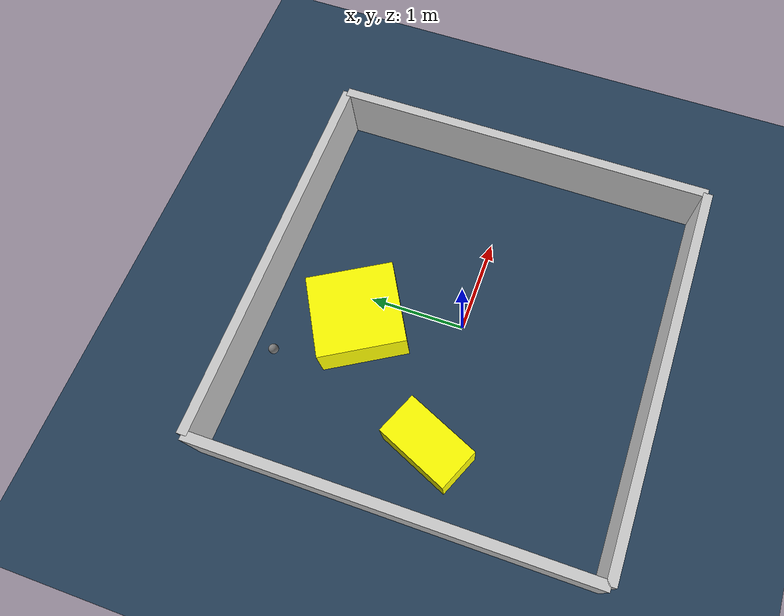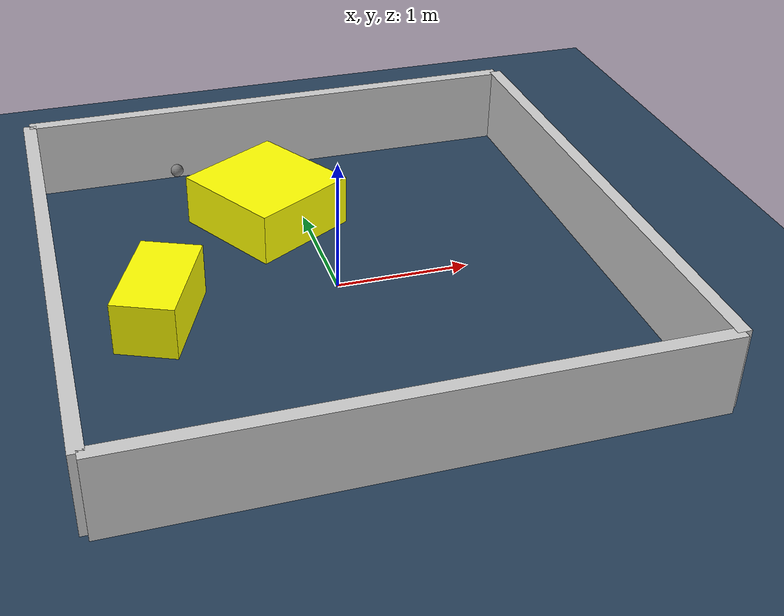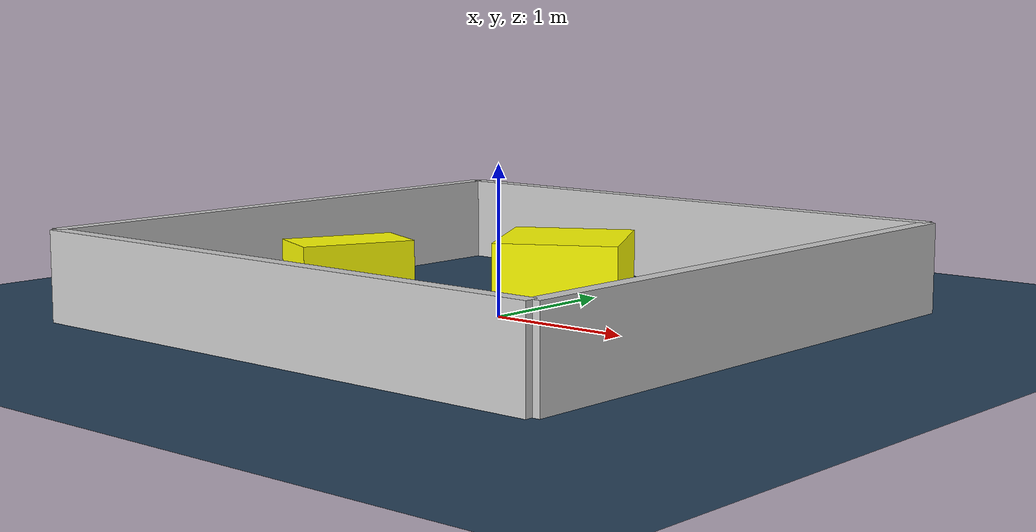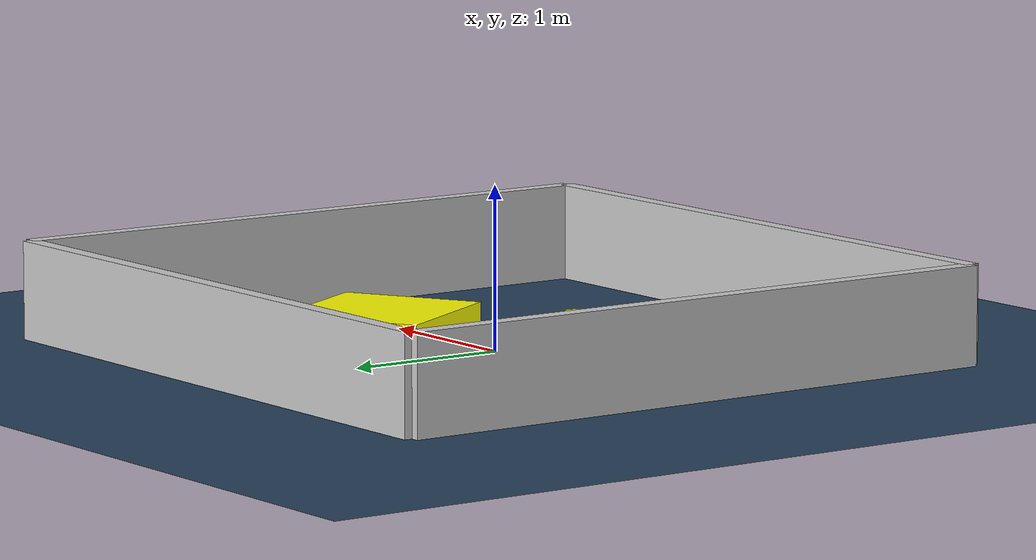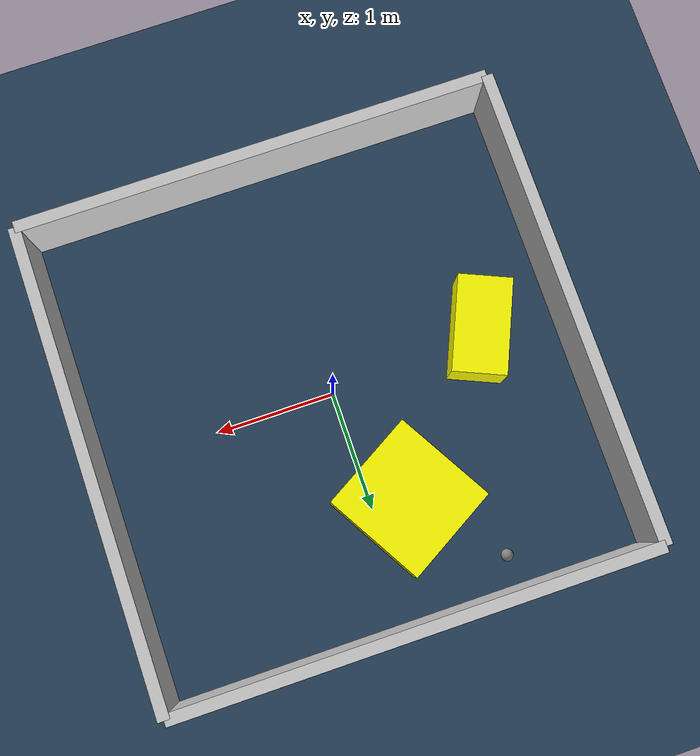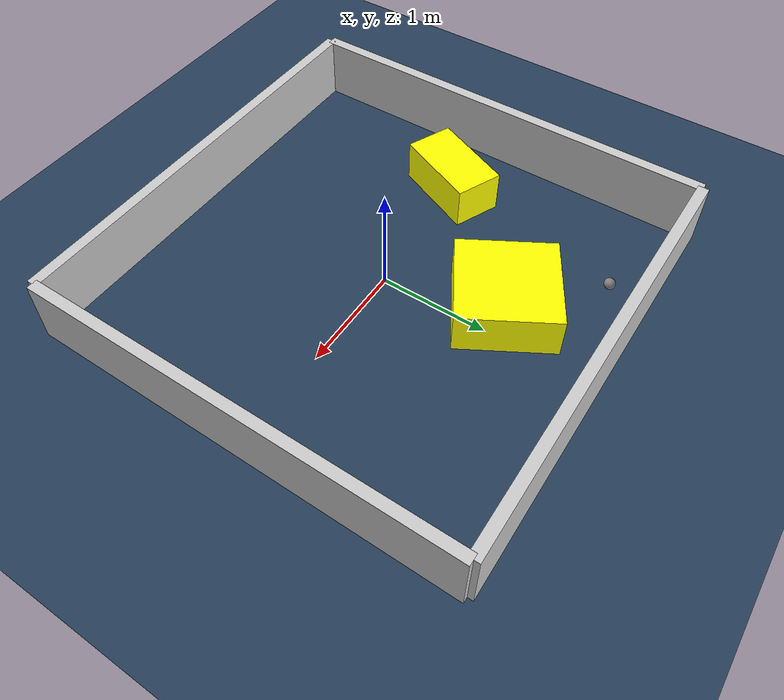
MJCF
<?xml version="1.0" ?>
<mujoco model="generated_environment">
  <option timestep="0.01" integrator="RK4" cone="elliptic"/>
  <default>
    <geom density="1"/>
  </default>
  <asset>
    <texture builtin="gradient" height="3072" rgb1="0.3 0.5 0.7" rgb2="0 0 0" type="skybox" width="512"/>
    <texture builtin="checker" height="300" mark="edge" markrgb="0.8 0.8 0.8" name="groundplane" rgb1="0.2 0.3 0.4" rgb2="0.1 0.2 0.3" type="2d" width="300"/>
    <material name="groundplane" reflectance="0.2" texrepeat="5 5" texture="groundplane" texuniform="true"/>
    <material name="robot" rgba="0.0 1.0 0.0 1"/>
  </asset>
  <worldbody>
    <light dir="0 0 -1" directional="true" pos="0 0 1.5"/>
    <geom condim="4" friction="1.0 0.005 0.001" material="groundplane" name="floor" size="0 0 0.05" type="plane"/>
    <body name="walls">
      <geom name="wall_1" condim="4" pos="-2.0 0.0 0.3" rgba="0.800000011920929 0.800000011920929 0.800000011920929 1.0" size="0.05 2.0 0.3" type="box"/>
      <geom name="wall_2" condim="4" pos="2.0 0.0 0.3" rgba="0.800000011920929 0.800000011920929 0.800000011920929 1.0" size="0.05 2.0 0.3" type="box"/>
      <geom name="wall_3" condim="4" pos="0.0 -2.0 0.3" rgba="0.800000011920929 0.800000011920929 0.800000011920929 1.0" size="2.0 0.05 0.3" type="box"/>
      <geom name="wall_4" condim="4" pos="0.0 2.0 0.3" rgba="0.800000011920929 0.800000011920929 0.800000011920929 1.0" size="2.0 0.05 0.3" type="box"/>
    </body>
    <body name="robot">
      <joint name="joint_x" type="slide" pos="0 0 0" axis="1 0 0"/>
      <joint name="joint_y" type="slide" pos="0 0 0" axis="0 1 0"/>
      <geom name="robot" type="sphere" pos="-0.8885969698274492 1.6934144132893323 0.2" size="0.05" mass="5." friction="1.0 0.005 0.0001" condim="4"/>
      <site name="sensor_ball"/>
    </body>
    <body name="obstacle_1_movable">
      <geom name="obstacle_1_movable" condim="4" pos="-0.288213915105183 1.0247680295821744 0.2" euler="0 0 30.220578417223294" friction="1.0 0.005 0.001" rgba="1 1 0 1" size="0.43366794744408294 0.4464866048094205 0.2" type="box" mass="0.1"/>
      <joint type="free"/>
    </body>
    <body name="obstacle_2_movable">
      <geom name="obstacle_2_movable" condim="4" pos="-1.3041661023662914 -0.09974397769006416 0.2" euler="0 0 66.64238755249735" friction="1.0 0.005 0.001" rgba="1 1 0 1" size="0.40240666386331475 0.2246209813574812 0.2" type="box" mass="0.1"/>
      <joint type="free"/>
    </body>
  </worldbody>
  <actuator>
    <motor name="actuator_x" joint="joint_x" gear="1" ctrlrange="-1 1"/>
    <motor name="actuator_y" joint="joint_y" gear="1" ctrlrange="-1 1"/>
  </actuator>
</mujoco>
